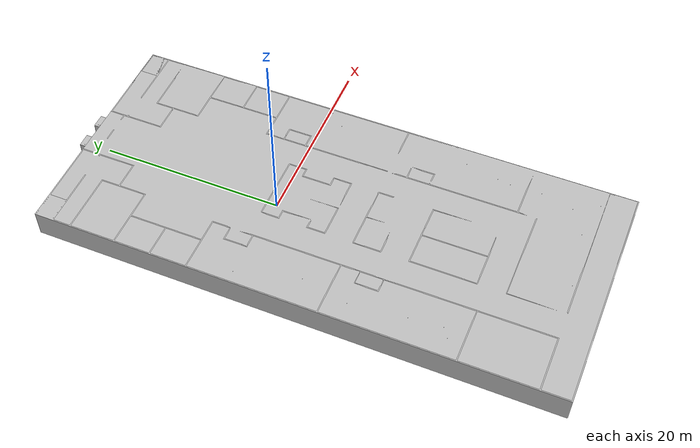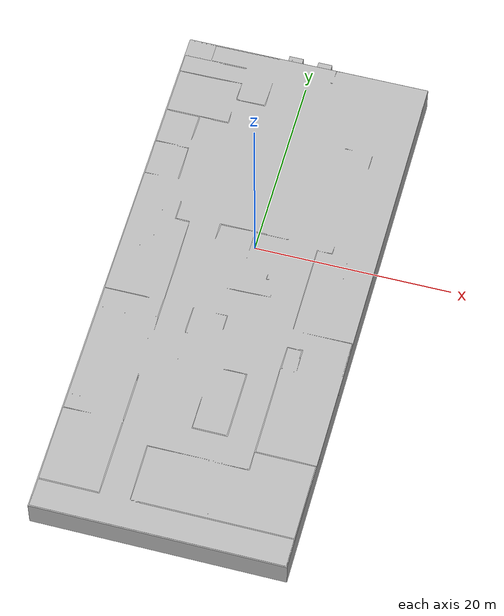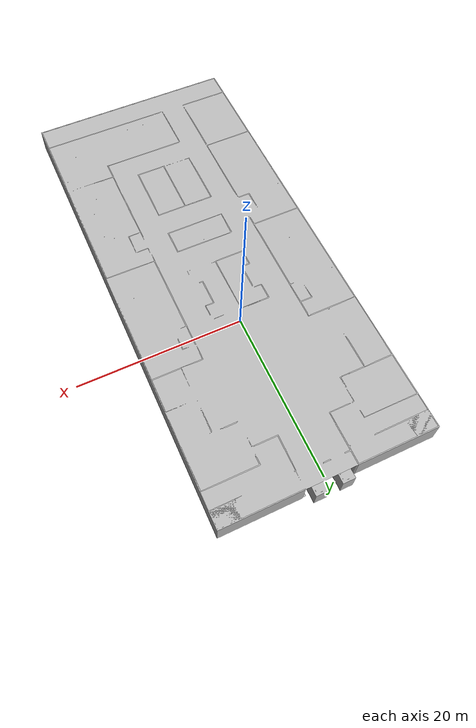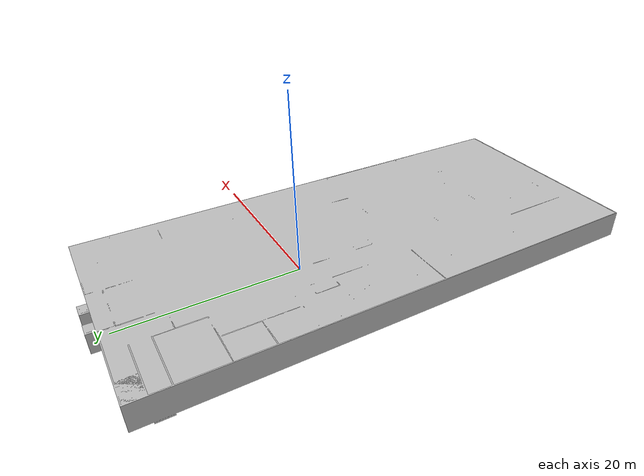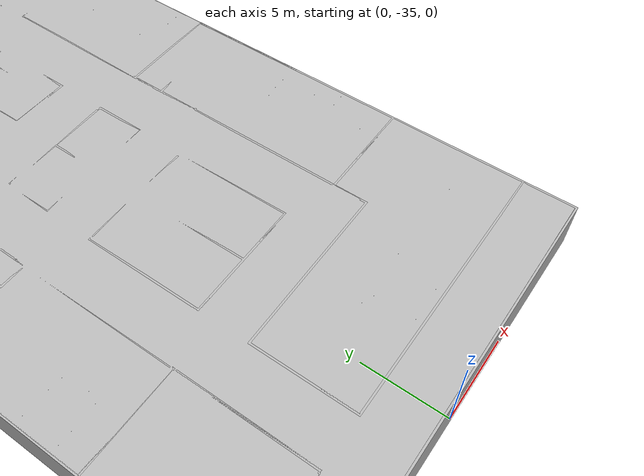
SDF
<?xml version='1.0' encoding='utf-8'?>
<sdf version="1.6">
  <world name="hospital">
    <gravity>0 0 -9.8</gravity>
    <physics default="0" name="default_physics" type="ode">
      <max_step_size>0.001</max_step_size>
      <real_time_factor>1</real_time_factor>
      <real_time_update_rate>1000</real_time_update_rate>
    </physics>

    <plugin filename="libignition-gazebo-physics-system.so" name="ignition::gazebo::systems::Physics"></plugin>
    <plugin filename="libignition-gazebo-user-commands-system.so" name="ignition::gazebo::systems::UserCommands"></plugin>
    <plugin filename="libignition-gazebo-scene-broadcaster-system.so" name="ignition::gazebo::systems::SceneBroadcaster"></plugin>
    <plugin filename="libignition-gazebo-imu-system.so" name="ignition::gazebo::systems::Imu"></plugin>
    <plugin filename="libignition-gazebo-contact-system.so" name="ignition::gazebo::systems::Contact"></plugin>

    <scene>
      <!-- Low ambient light preserves the textures' colour and contrast. -->
      <ambient>0.22 0.25 0.30 1</ambient>
      <background>0.08 0.12 0.18 1</background>
      <shadows>true</shadows>
    </scene>
    <light type="directional" name="sun">
      <visualize>true</visualize>
      <cast_shadows>true</cast_shadows>
      <pose>0 0 10 0 0 0</pose>
      <diffuse>0.52 0.58 0.68 1</diffuse>
      <specular>0.12 0.14 0.18 1</specular>
      <direction>-0.35 0.20 -0.92</direction>
    </light>

    <!-- Neutral-white ceiling lights give the long hospital corridors an
         even indoor exposure without washing out the imported textures. -->
    <light type="point" name="lobby_light">
      <visualize>true</visualize>
      <pose>0 7 3.2 0 0 0</pose>
      <diffuse>0.92 0.95 1.0 1</diffuse>
      <specular>0.25 0.28 0.32 1</specular>
      <attenuation><range>16</range><constant>0.55</constant><linear>0.025</linear><quadratic>0.006</quadratic></attenuation>
      <cast_shadows>false</cast_shadows>
    </light>
    <light type="point" name="north_corridor_light">
      <visualize>true</visualize>
      <pose>0 17 3.2 0 0 0</pose>
      <diffuse>0.88 0.93 1.0 1</diffuse>
      <specular>0.22 0.25 0.30 1</specular>
      <attenuation><range>15</range><constant>0.55</constant><linear>0.025</linear><quadratic>0.006</quadratic></attenuation>
      <cast_shadows>false</cast_shadows>
    </light>
    <light type="point" name="central_corridor_light">
      <visualize>true</visualize>
      <pose>0 -3 3.2 0 0 0</pose>
      <diffuse>0.92 0.95 1.0 1</diffuse>
      <specular>0.25 0.28 0.32 1</specular>
      <attenuation><range>16</range><constant>0.55</constant><linear>0.025</linear><quadratic>0.006</quadratic></attenuation>
      <cast_shadows>false</cast_shadows>
    </light>
    <light type="point" name="south_corridor_light">
      <visualize>true</visualize>
      <pose>0 -13 3.2 0 0 0</pose>
      <diffuse>0.96 0.94 0.88 1</diffuse>
      <specular>0.28 0.26 0.22 1</specular>
      <attenuation><range>16</range><constant>0.55</constant><linear>0.025</linear><quadratic>0.006</quadratic></attenuation>
      <cast_shadows>false</cast_shadows>
    </light>
    <light type="point" name="ward_light">
      <visualize>true</visualize>
      <pose>0 -23 3.2 0 0 0</pose>
      <diffuse>0.96 0.93 0.86 1</diffuse>
      <specular>0.28 0.25 0.20 1</specular>
      <attenuation><range>16</range><constant>0.55</constant><linear>0.025</linear><quadratic>0.006</quadratic></attenuation>
      <cast_shadows>false</cast_shadows>
    </light>
    <include>
      <uri>model://aws_robomaker_hospital_floor_01_floor</uri>
      <name>aws_robomaker_hospital_floor_01_floor_1</name>
      <static>true</static>
      <pose>-0.001425 -0.014447 0 0 -0 0</pose>
    </include>
    <include>
      <uri>model://aws_robomaker_hospital_floor_01_walls</uri>
      <name>aws_robomaker_hospital_floor_01_walls_1</name>
      <static>true</static>
      <pose>-0.013823 -0.013783 0 0 -0 0</pose>
    </include>
    <include>
      <uri>model://aws_robomaker_hospital_nursesstation_01</uri>
      <name>aws_robomaker_hospital_nursesstation_01_1</name>
      <static>true</static>
      <pose>0 1.5 0 0 -0 0</pose>
    </include>
    <include>
      <uri>model://aws_robomaker_hospital_elevator_01_portal</uri>
      <name>aws_robomaker_hospital_elevator_01_portal_1</name>
      <static>true</static>
      <pose>-1.50654 19.4813 0.19 0 -0 0</pose>
    </include>
    <include>
      <uri>model://aws_robomaker_hospital_elevator_01_portal</uri>
      <name>aws_robomaker_hospital_elevator_01_portal_2</name>
      <static>true</static>
      <pose>1.51134 19.487 0.19 0 -0 0</pose>
    </include>
    <include>
      <uri>model://aws_robomaker_hospital_elevator_01_car</uri>
      <name>aws_robomaker_hospital_elevator_01_car_1</name>
      <static>true</static>
      <pose>-1.49587 19.35 0.19 0 -0 0</pose>
    </include>
    <include>
      <uri>model://aws_robomaker_hospital_elevator_01_car</uri>
      <name>aws_robomaker_hospital_elevator_01_car_2</name>
      <static>true</static>
      <pose>1.5407 19.35 0.19 0 -0 0</pose>
    </include>
    <include>
      <uri>model://aws_robomaker_hospital_elevator_01_door</uri>
      <name>aws_robomaker_hospital_elevator_01_door_1</name>
      <static>true</static>
      <pose>-1.51 19.35 0.19 0 -0 0</pose>
    </include>
    <include>
      <uri>model://aws_robomaker_hospital_elevator_01_door</uri>
      <name>aws_robomaker_hospital_elevator_01_door_2</name>
      <static>true</static>
      <pose>1.52843 19.3627 0.19 0 -0 0</pose>
    </include>
    <include>
      <uri>model://aws_robomaker_hospital_curtain_half_open_01</uri>
      <name>aws_robomaker_hospital_curtain_half_open_01_1</name>
      <static>true</static>
      <pose>-11.0216 -13.8069 0 0 -0 1.55358</pose>
    </include>
    <include>
      <uri>model://aws_robomaker_hospital_curtain_closed_01</uri>
      <name>aws_robomaker_hospital_curtain_closed_01_1</name>
      <static>true</static>
      <pose>-11.022 -7.27757 0 0 -0 1.57907</pose>
    </include>
    <include>
      <uri>model://aws_robomaker_hospital_curtain_half_open_01</uri>
      <name>aws_robomaker_hospital_curtain_half_open_01_2</name>
      <static>true</static>
      <pose>11.1417 -21.4039 0 0 0 -1.55117</pose>
    </include>
    <include>
      <uri>model://aws_robomaker_hospital_curtain_half_open_01</uri>
      <name>aws_robomaker_hospital_curtain_half_open_01_3</name>
      <static>true</static>
      <pose>11.1068 -17.8472 0 0 0 -1.55117</pose>
    </include>
    <include>
      <uri>model://aws_robomaker_hospital_curtain_half_open_01</uri>
      <name>aws_robomaker_hospital_curtain_half_open_01_4</name>
      <static>true</static>
      <pose>11.1374 -14.1551 0 0 0 -1.55117</pose>
    </include>
    <include>
      <uri>model://aws_robomaker_hospital_curtain_half_open_01</uri>
      <name>aws_robomaker_hospital_curtain_half_open_01_5</name>
      <static>true</static>
      <pose>-11.0332 -17.61 0 0 -0 1.55358</pose>
    </include>
    <include>
      <uri>model://aws_robomaker_hospital_curtain_half_open_01</uri>
      <name>aws_robomaker_hospital_curtain_half_open_01_6</name>
      <static>true</static>
      <pose>-11.0086 -21.7566 0 0 -0 1.55358</pose>
    </include>
    <include>
      <uri>model://aws_robomaker_hospital_curtain_half_open_01</uri>
      <name>aws_robomaker_hospital_curtain_half_open_01_7</name>
      <static>true</static>
      <pose>-11.0426 0.066126 0 0 -0 1.56614</pose>
    </include>
    <include>
      <uri>model://aws_robomaker_hospital_curtain_half_open_01</uri>
      <name>aws_robomaker_hospital_curtain_half_open_01_8</name>
      <static>true</static>
      <pose>-11.0309 -3.75145 0 0 -0 1.56614</pose>
    </include>
    <include>
      <uri>model://aws_robomaker_hospital_floor_01_ceiling</uri>
      <name>aws_robomaker_hospital_floor_01_ceiling_1</name>
      <static>true</static>
      <pose>0.016552 0.050728 0 0 -0 0</pose>
    </include>
    <include>
      <uri>model://aws_robomaker_hospital_ramp_01</uri>
      <name>aws_robomaker_hospital_ramp_01_1</name>
      <static>true</static>
      <pose>-1.70996 16.3685 0 0 -0 0</pose>
    </include>
    <include>
      <uri>model://aws_robomaker_hospital_curtain_open_01</uri>
      <name>aws_robomaker_hospital_curtain_open_01_1</name>
      <static>true</static>
      <pose>11.0051 -6.91002 0 0 0 -1.58737</pose>
    </include>
    <include>
      <uri>model://aws_robomaker_hospital_curtain_closed_01</uri>
      <name>aws_robomaker_hospital_curtain_closed_01_2</name>
      <static>true</static>
      <pose>11.0303 -3.70124 0 0 0 -1.58306</pose>
    </include>
    <include>
      <uri>model://aws_robomaker_hospital_curtain_closed_01</uri>
      <name>aws_robomaker_hospital_curtain_closed_01_3</name>
      <static>true</static>
      <pose>10.9586 0.159483 0 0 0 -1.58306</pose>
    </include>
    <include>
      <uri>model://aws_robomaker_hospital_curtain_closed_01</uri>
      <name>aws_robomaker_hospital_curtain_closed_01_4</name>
      <static>true</static>
      <pose>10.9819 -26.2149 0 0 0 -1.58306</pose>
    </include>
    <include>
      <uri>model://aws_robomaker_hospital_curtain_closed_01</uri>
      <name>aws_robomaker_hospital_curtain_closed_01_5</name>
      <static>true</static>
      <pose>1.31506 -30.5771 0 0 -0 3.1401</pose>
    </include>
    <include>
      <uri>model://aws_robomaker_hospital_curtain_closed_01</uri>
      <name>aws_robomaker_hospital_curtain_closed_01_6</name>
      <static>true</static>
      <pose>5.49659 -30.5364 0 0 -0 3.1401</pose>
    </include>
    <include>
      <uri>model://aws_robomaker_hospital_curtain_closed_01</uri>
      <name>aws_robomaker_hospital_curtain_closed_01_7</name>
      <static>true</static>
      <pose>9.80048 -30.5918 0 0 -0 3.1401</pose>
    </include>
  </world>
</sdf>

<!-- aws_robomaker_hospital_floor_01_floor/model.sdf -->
<sdf version="1.6">
  <model name="aws_robomaker_hospital_floor_01_floor">
    <link name="link">
      <visual name="visual">
	    <geometry>
          <mesh>
            <uri>model://aws_robomaker_hospital_floor_01_floor/meshes/aws_robomaker_hospital_floor_01_floor_visual.dae</uri>
          </mesh>
        </geometry>
      </visual>
      <collision name="collision">
        <geometry>
          <mesh>
            <uri>model://aws_robomaker_hospital_floor_01_floor/meshes/aws_robomaker_hospital_floor_01_floor_collision.dae</uri>
          </mesh>
        </geometry>
      </collision>
</link>
  <static>1</static>
  </model>
</sdf>

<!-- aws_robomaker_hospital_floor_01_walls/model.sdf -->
<sdf version="1.6">
  <model name="aws_robomaker_hospital_floor_01_walls">
    <link name="link">
      <visual name="visual">
	    <geometry>
          <mesh>
            <uri>model://aws_robomaker_hospital_floor_01_walls/meshes/aws_robomaker_hospital_floor_01_walls_visual.dae</uri>
          </mesh>
        </geometry>
      </visual>
      <collision name="collision">
        <geometry>
          <mesh>
            <uri>model://aws_robomaker_hospital_floor_01_walls/meshes/aws_robomaker_hospital_floor_01_walls_collision.dae</uri>
          </mesh>
        </geometry>
      </collision>
</link>
  <static>1</static>
  </model>
</sdf>

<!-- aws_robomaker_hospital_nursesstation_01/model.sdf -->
<sdf version="1.6">
  <model name="aws_robomaker_hospital_nursesstation_01">
    <link name="link">
      <visual name="visual">
	    <geometry>
          <mesh>
            <uri>model://aws_robomaker_hospital_nursesstation_01/meshes/aws_robomaker_hospital_nursesstation_01_visual.dae</uri>
          </mesh>
        </geometry>
      </visual>
      <collision name="collision">
        <geometry>
          <mesh>
            <uri>model://aws_robomaker_hospital_nursesstation_01/meshes/aws_robomaker_hospital_nursesstation_01_collision.dae</uri>
          </mesh>
        </geometry>
      </collision>
</link>
  <static>1</static>
  </model>
</sdf>

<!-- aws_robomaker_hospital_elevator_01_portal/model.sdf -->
<sdf version="1.6">
  <model name="aws_robomaker_hospital_elevator_01_portal">
    <link name="link">
      <visual name="visual">
	    <geometry>
          <mesh>
            <uri>model://aws_robomaker_hospital_elevator_01_portal/meshes/aws_robomaker_hospital_elevator_01_portal_visual.dae</uri>
          </mesh>
        </geometry>
      </visual>
      <collision name="collision">
        <geometry>
          <mesh>
            <uri>model://aws_robomaker_hospital_elevator_01_portal/meshes/aws_robomaker_hospital_elevator_01_portal_collision.dae</uri>
          </mesh>
        </geometry>
      </collision>
</link>
  <static>1</static>
  </model>
</sdf>

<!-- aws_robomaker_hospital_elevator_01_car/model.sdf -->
<sdf version="1.6">
  <model name="aws_robomaker_hospital_elevator_01_car">
    <link name="link">
      <visual name="visual">
	    <geometry>
          <mesh>
            <uri>model://aws_robomaker_hospital_elevator_01_car/meshes/aws_robomaker_hospital_elevator_01_car_visual.dae</uri>
          </mesh>
        </geometry>
      </visual>
      <collision name="collision">
        <geometry>
          <mesh>
            <uri>model://aws_robomaker_hospital_elevator_01_car/meshes/aws_robomaker_hospital_elevator_01_car_collision.dae</uri>
          </mesh>
        </geometry>
      </collision>
</link>
  <static>1</static>
  </model>
</sdf>

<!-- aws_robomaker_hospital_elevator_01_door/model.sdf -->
<sdf version="1.6">
  <model name="aws_robomaker_hospital_elevator_01_door">
    <link name="link">
      <visual name="visual">
	    <geometry>
          <mesh>
            <uri>model://aws_robomaker_hospital_elevator_01_door/meshes/aws_robomaker_hospital_elevator_01_door_visual.dae</uri>
          </mesh>
        </geometry>
      </visual>
      <collision name="collision">
        <geometry>
          <mesh>
            <uri>model://aws_robomaker_hospital_elevator_01_door/meshes/aws_robomaker_hospital_elevator_01_door_collision.dae</uri>
          </mesh>
        </geometry>
      </collision>
</link>
  <static>1</static>
  </model>
</sdf>

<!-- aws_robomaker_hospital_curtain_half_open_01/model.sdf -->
<sdf version="1.6">
  <model name="aws_robomaker_hospital_curtain_half_open_01">
    <link name="link">
      <visual name="visual">
	    <geometry>
          <mesh>
            <uri>model://aws_robomaker_hospital_curtain_half_open_01/meshes/aws_robomaker_hospital_curtain_half_open_01_visual.dae</uri>
          </mesh>
        </geometry>
      </visual>
      <collision name="collision">
        <geometry>
          <mesh>
            <uri>model://aws_robomaker_hospital_curtain_half_open_01/meshes/aws_robomaker_hospital_curtain_half_open_01_collision.dae</uri>
          </mesh>
        </geometry>
      </collision>
</link>
  <static>1</static>
  </model>
</sdf>

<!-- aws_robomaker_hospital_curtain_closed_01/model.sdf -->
<sdf version="1.6">
  <model name="aws_robomaker_hospital_curtain_closed_01">
    <link name="link">
      <visual name="visual">
	    <geometry>
          <mesh>
            <uri>model://aws_robomaker_hospital_curtain_closed_01/meshes/aws_robomaker_hospital_curtain_closed_01_visual.dae</uri>
          </mesh>
        </geometry>
      </visual>
      <collision name="collision">
        <geometry>
          <mesh>
            <uri>model://aws_robomaker_hospital_curtain_closed_01/meshes/aws_robomaker_hospital_curtain_closed_01_collision.dae</uri>
          </mesh>
        </geometry>
      </collision>
</link>
  <static>1</static>
  </model>
</sdf>

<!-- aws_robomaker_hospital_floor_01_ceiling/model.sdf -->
<sdf version="1.6">
  <model name="aws_robomaker_hospital_floor_01_ceiling">
    <link name="link">
      <visual name="visual">
	    <geometry>
          <mesh>
            <uri>model://aws_robomaker_hospital_floor_01_ceiling/meshes/aws_robomaker_hospital_floor_01_ceiling_visual.dae</uri>
          </mesh>
        </geometry>
      </visual>
      <collision name="collision">
        <geometry>
          <mesh>
            <uri>model://aws_robomaker_hospital_floor_01_ceiling/meshes/aws_robomaker_hospital_floor_01_ceiling_collision.dae</uri>
          </mesh>
        </geometry>
      </collision>
</link>
  <static>1</static>
  </model>
</sdf>

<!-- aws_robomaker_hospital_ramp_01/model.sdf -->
<sdf version="1.6">
  <model name="aws_robomaker_hospital_ramp_01">
    <link name="link">
      <visual name="visual">
	    <geometry>
          <mesh>
            <uri>model://aws_robomaker_hospital_ramp_01/meshes/aws_robomaker_hospital_ramp_01_visual.dae</uri>
          </mesh>
        </geometry>
      </visual>
      <collision name="collision">
        <geometry>
          <mesh>
            <uri>model://aws_robomaker_hospital_ramp_01/meshes/aws_robomaker_hospital_ramp_01_collision.dae</uri>
          </mesh>
        </geometry>
      </collision>
</link>
  <static>1</static>
  </model>
</sdf>

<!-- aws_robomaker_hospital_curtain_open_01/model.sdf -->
<sdf version="1.6">
  <model name="aws_robomaker_hospital_curtain_open_01">
    <link name="link">
      <visual name="visual">
	    <geometry>
          <mesh>
            <uri>model://aws_robomaker_hospital_curtain_open_01/meshes/aws_robomaker_hospital_curtain_open_01_visual.dae</uri>
          </mesh>
        </geometry>
      </visual>
      <collision name="collision">
        <geometry>
          <mesh>
            <uri>model://aws_robomaker_hospital_curtain_open_01/meshes/aws_robomaker_hospital_curtain_open_01_collision.dae</uri>
          </mesh>
        </geometry>
      </collision>
</link>
  <static>1</static>
  </model>
</sdf>
